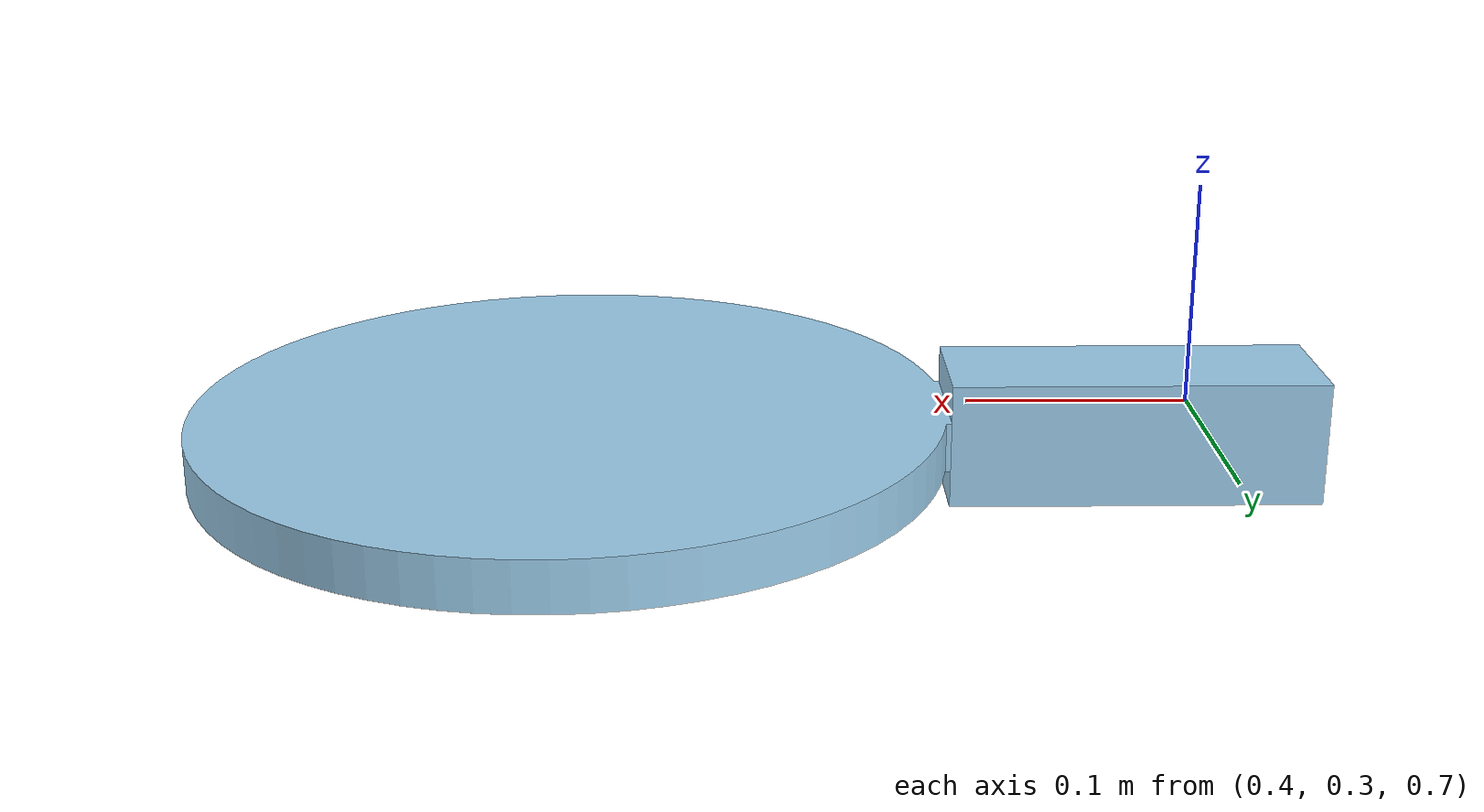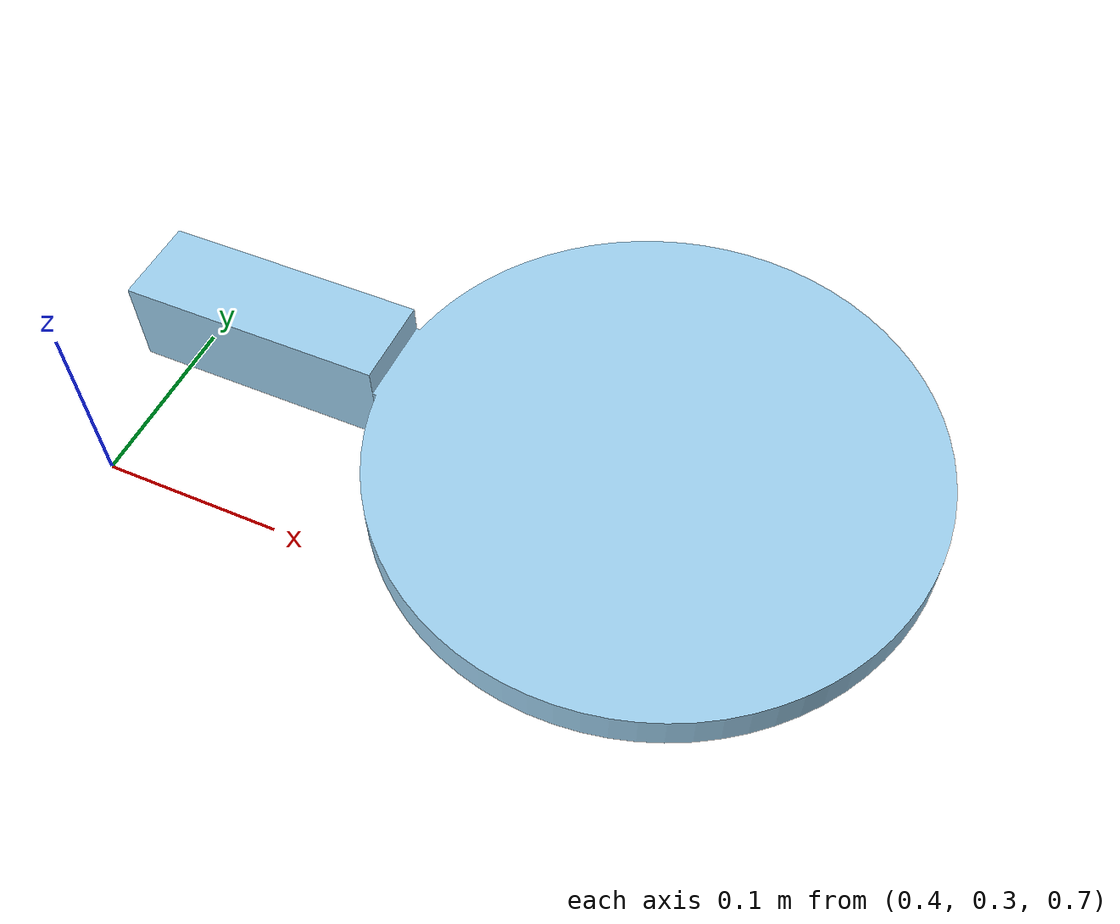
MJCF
<mujoco model="onshape">
  <compiler angle="radian"/>
  <asset>
    <mesh name="plane" file="plane.stl"/>
    <mesh name="handle" file="handle.stl"/>
  </asset>
  <worldbody>
    <body name="racket" pos="0.6 0.2 0.7" euler="0 0 -1.57">
      <geom pos="-0.200735 0.0715492 0.0165642" type="mesh" rgba="0.615686 0.811765 0.929412 1" mesh="plane" conaffinity="1" contype="1"/>
      <geom pos="-0.200735 0.0715492 0.0165642" type="mesh" rgba="0.615686 0.811765 0.929412 1" mesh="handle" conaffinity="1" contype="1" name="handle"/>
    </body>
  </worldbody>
</mujoco>
